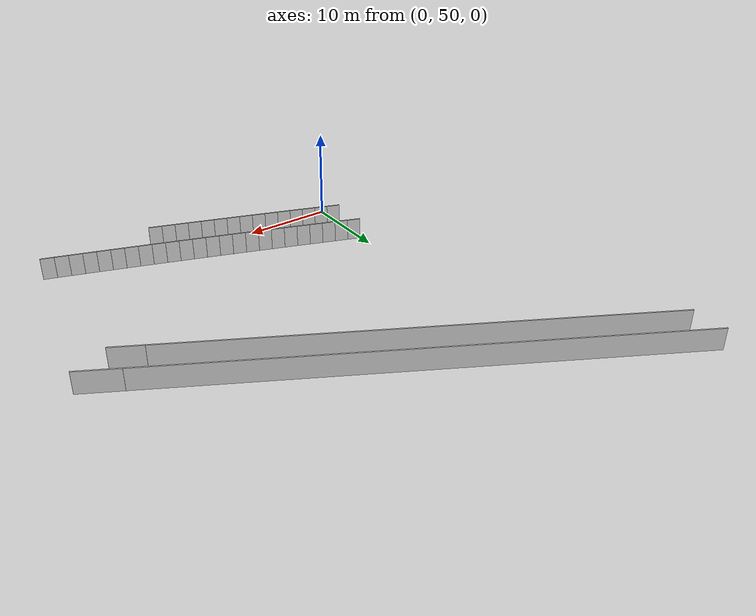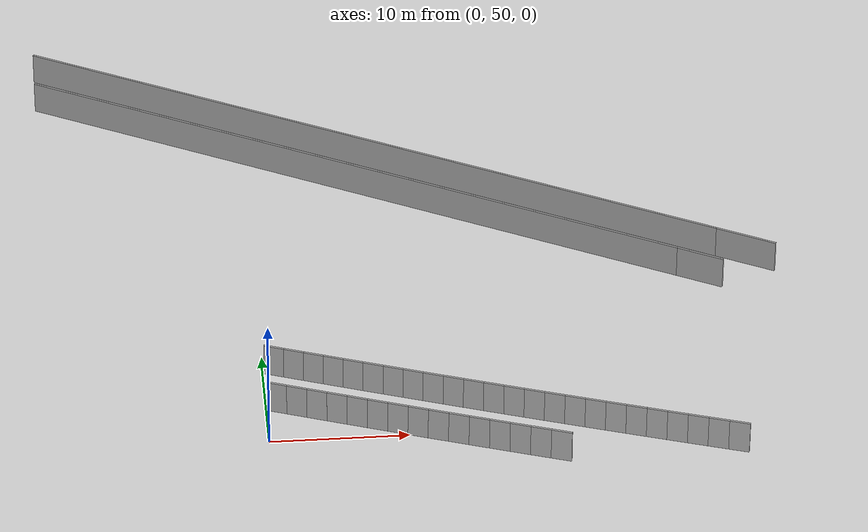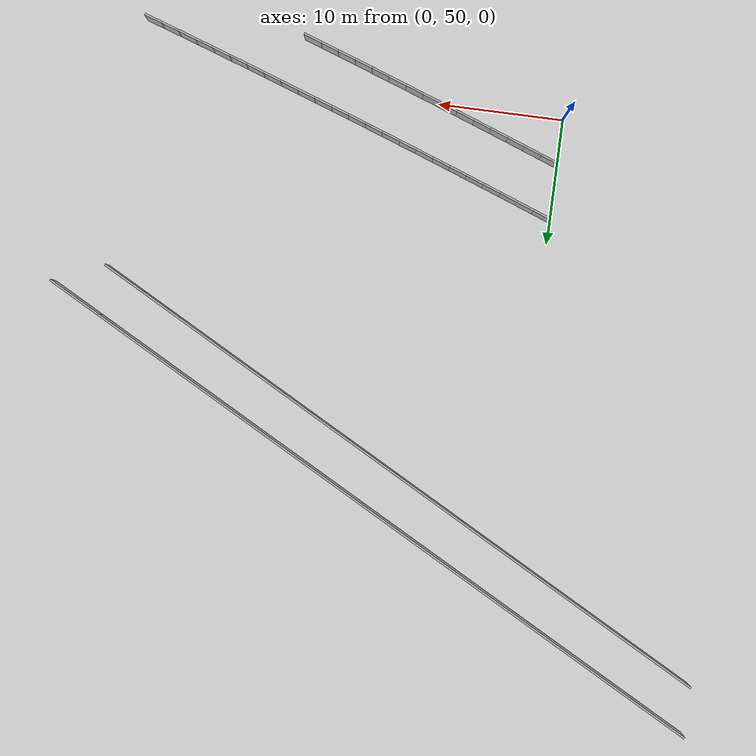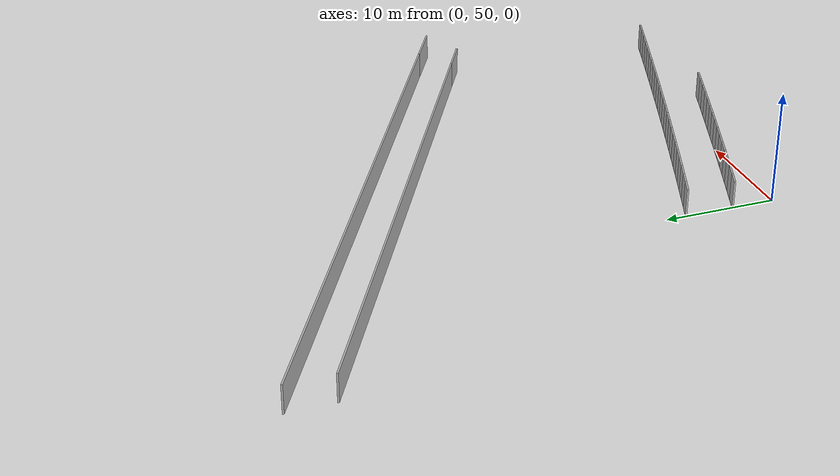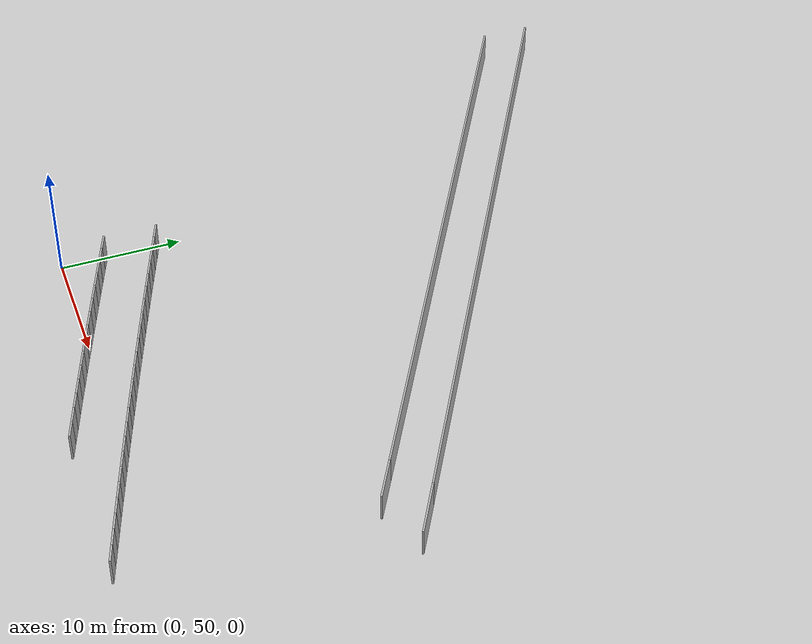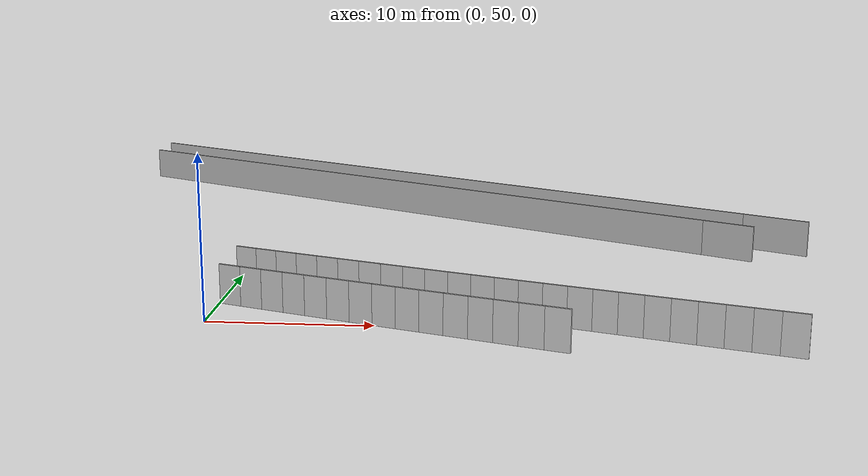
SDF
<sdf version="1.6">
 <model name="sps_0802">
  <static>1</static>
  <allow_auto_disable>0</allow_auto_disable>
  <link name="Wall190">
   <collision name="collision"><geometry><box><size>3.63576 0.15 2.5</size></box></geometry></collision>
   <visual name="visual">
    <geometry><box><size>3.63576 0.15 2.5</size></box></geometry>
    <transparency>0.0</transparency>
   </visual>
   <pose>32.8732 67.0233 1.25 0 -0 2.64268</pose>
  </link>
  <link name="Wall191">
   <collision name="collision"><geometry><box><size>53.3052 0.15 2.5</size></box></geometry></collision>
   <visual name="visual">
    <geometry><box><size>53.3052 0.15 2.5</size></box></geometry>
    <transparency>0.0</transparency>
   </visual>
   <pose>7.87316 80.6456 1.25 0 -0 2.64268</pose>
  </link>
  <link name="Wall529">
   <collision name="collision"><geometry><box><size>56.9411 0.15 2.5</size></box></geometry></collision>
   <visual name="visual">
    <geometry><box><size>56.9411 0.15 2.5</size></box></geometry>
    <transparency>0.0</transparency>
   </visual>
   <pose>9.46944 83.7614 1.25 0 0 -0.498918</pose>
  </link>
  <link name="Wall530">
   <collision name="collision"><geometry><box><size>4.69376 0.15 2.5</size></box></geometry></collision>
   <visual name="visual">
    <geometry><box><size>4.69376 0.15 2.5</size></box></geometry>
    <transparency>0.0</transparency>
   </visual>
   <pose>36.5302 69.016 1.25 0 0 -0.498918</pose>
  </link>
  <link name="Wall8823">
   <collision name="collision"><geometry><box><size>1.49888 0.15 2.5</size></box></geometry></collision>
   <visual name="visual">
    <geometry><box><size>1.49888 0.15 2.5</size></box></geometry>
    <transparency>0.0</transparency>
   </visual>
   <pose>0.735038 53.5175 1.25 0 0 -0.357736</pose>
  </link>
  <link name="Wall8824">
   <collision name="collision"><geometry><box><size>1.49896 0.15 2.5</size></box></geometry></collision>
   <visual name="visual">
    <geometry><box><size>1.49896 0.15 2.5</size></box></geometry>
    <transparency>0.0</transparency>
   </visual>
   <pose>2.13946 52.9937 1.25 0 0 -0.35624</pose>
  </link>
  <link name="Wall8825">
   <collision name="collision"><geometry><box><size>1.49893 0.15 2.5</size></box></geometry></collision>
   <visual name="visual">
    <geometry><box><size>1.49893 0.15 2.5</size></box></geometry>
    <transparency>0.0</transparency>
   </visual>
   <pose>3.54476 52.4722 1.25 0 0 -0.354424</pose>
  </link>
  <link name="Wall8826">
   <collision name="collision"><geometry><box><size>1.49911 0.15 2.5</size></box></geometry></collision>
   <visual name="visual">
    <geometry><box><size>1.49911 0.15 2.5</size></box></geometry>
    <transparency>0.0</transparency>
   </visual>
   <pose>4.95095 51.9529 1.25 0 0 -0.353119</pose>
  </link>
  <link name="Wall8827">
   <collision name="collision"><geometry><box><size>1.49878 0.15 2.5</size></box></geometry></collision>
   <visual name="visual">
    <geometry><box><size>1.49878 0.15 2.5</size></box></geometry>
    <transparency>0.0</transparency>
   </visual>
   <pose>6.35787 51.4358 1.25 0 0 -0.351335</pose>
  </link>
  <link name="Wall8828">
   <collision name="collision"><geometry><box><size>1.49895 0.15 2.5</size></box></geometry></collision>
   <visual name="visual">
    <geometry><box><size>1.49895 0.15 2.5</size></box></geometry>
    <transparency>0.0</transparency>
   </visual>
   <pose>7.76556 50.921 1.25 0 0 -0.349863</pose>
  </link>
  <link name="Wall8829">
   <collision name="collision"><geometry><box><size>1.49883 0.15 2.5</size></box></geometry></collision>
   <visual name="visual">
    <geometry><box><size>1.49883 0.15 2.5</size></box></geometry>
    <transparency>0.0</transparency>
   </visual>
   <pose>9.17403 50.4083 1.25 0 0 -0.348333</pose>
  </link>
  <link name="Wall8830">
   <collision name="collision"><geometry><box><size>1.499 0.15 2.5</size></box></geometry></collision>
   <visual name="visual">
    <geometry><box><size>1.499 0.15 2.5</size></box></geometry>
    <transparency>0.0</transparency>
   </visual>
   <pose>10.5833 49.8978 1.25 0 0 -0.346732</pose>
  </link>
  <link name="Wall8831">
   <collision name="collision"><geometry><box><size>1.49897 0.15 2.5</size></box></geometry></collision>
   <visual name="visual">
    <geometry><box><size>1.49897 0.15 2.5</size></box></geometry>
    <transparency>0.0</transparency>
   </visual>
   <pose>11.9936 49.3896 1.25 0 0 -0.345007</pose>
  </link>
  <link name="Wall8832">
   <collision name="collision"><geometry><box><size>1.499 0.15 2.5</size></box></geometry></collision>
   <visual name="visual">
    <geometry><box><size>1.499 0.15 2.5</size></box></geometry>
    <transparency>0.0</transparency>
   </visual>
   <pose>13.4046 48.8836 1.25 0 0 -0.343616</pose>
  </link>
  <link name="Wall8833">
   <collision name="collision"><geometry><box><size>1.49901 0.15 2.5</size></box></geometry></collision>
   <visual name="visual">
    <geometry><box><size>1.49901 0.15 2.5</size></box></geometry>
    <transparency>0.0</transparency>
   </visual>
   <pose>14.8164 48.3798 1.25 0 0 -0.341928</pose>
  </link>
  <link name="Wall8834">
   <collision name="collision"><geometry><box><size>1.49896 0.15 2.5</size></box></geometry></collision>
   <visual name="visual">
    <geometry><box><size>1.49896 0.15 2.5</size></box></geometry>
    <transparency>0.0</transparency>
   </visual>
   <pose>16.229 47.8783 1.25 0 0 -0.340384</pose>
  </link>
  <link name="Wall8835">
   <collision name="collision"><geometry><box><size>1.49902 0.15 2.5</size></box></geometry></collision>
   <visual name="visual">
    <geometry><box><size>1.49902 0.15 2.5</size></box></geometry>
    <transparency>0.0</transparency>
   </visual>
   <pose>17.6424 47.379 1.25 0 0 -0.338773</pose>
  </link>
  <link name="Wall8836">
   <collision name="collision"><geometry><box><size>1.49883 0.15 2.5</size></box></geometry></collision>
   <visual name="visual">
    <geometry><box><size>1.49883 0.15 2.5</size></box></geometry>
    <transparency>0.0</transparency>
   </visual>
   <pose>19.0564 46.8819 1.25 0 0 -0.337307</pose>
  </link>
  <link name="Wall8837">
   <collision name="collision"><geometry><box><size>1.49883 0.15 2.5</size></box></geometry></collision>
   <visual name="visual">
    <geometry><box><size>1.49883 0.15 2.5</size></box></geometry>
    <transparency>0.0</transparency>
   </visual>
   <pose>20.4712 46.3871 1.25 0 0 -0.335581</pose>
  </link>
  <link name="Wall9903">
   <collision name="collision"><geometry><box><size>1.49237 0.15 2.5</size></box></geometry></collision>
   <visual name="visual">
    <geometry><box><size>1.49237 0.15 2.5</size></box></geometry>
    <transparency>0.0</transparency>
   </visual>
   <pose>0.787345 57.9193 1.25 0 0 -0.359369</pose>
  </link>
  <link name="Wall9904">
   <collision name="collision"><geometry><box><size>1.49249 0.15 2.5</size></box></geometry></collision>
   <visual name="visual">
    <geometry><box><size>1.49249 0.15 2.5</size></box></geometry>
    <transparency>0.0</transparency>
   </visual>
   <pose>2.18487 57.3956 1.25 0 0 -0.357722</pose>
  </link>
  <link name="Wall9905">
   <collision name="collision"><geometry><box><size>1.49224 0.15 2.5</size></box></geometry></collision>
   <visual name="visual">
    <geometry><box><size>1.49224 0.15 2.5</size></box></geometry>
    <transparency>0.0</transparency>
   </visual>
   <pose>3.58315 56.8741 1.25 0 0 -0.356214</pose>
  </link>
  <link name="Wall9906">
   <collision name="collision"><geometry><box><size>1.49244 0.15 2.5</size></box></geometry></collision>
   <visual name="visual">
    <geometry><box><size>1.49244 0.15 2.5</size></box></geometry>
    <transparency>0.0</transparency>
   </visual>
   <pose>4.98223 56.3548 1.25 0 0 -0.354592</pose>
  </link>
  <link name="Wall9907">
   <collision name="collision"><geometry><box><size>1.49251 0.15 2.5</size></box></geometry></collision>
   <visual name="visual">
    <geometry><box><size>1.49251 0.15 2.5</size></box></geometry>
    <transparency>0.0</transparency>
   </visual>
   <pose>6.38225 55.8377 1.25 0 0 -0.353051</pose>
  </link>
  <link name="Wall9908">
   <collision name="collision"><geometry><box><size>1.49241 0.15 2.5</size></box></geometry></collision>
   <visual name="visual">
    <geometry><box><size>1.49241 0.15 2.5</size></box></geometry>
    <transparency>0.0</transparency>
   </visual>
   <pose>7.78307 55.3228 1.25 0 0 -0.351461</pose>
  </link>
  <link name="Wall9909">
   <collision name="collision"><geometry><box><size>1.49232 0.15 2.5</size></box></geometry></collision>
   <visual name="visual">
    <geometry><box><size>1.49232 0.15 2.5</size></box></geometry>
    <transparency>0.0</transparency>
   </visual>
   <pose>9.18465 54.8102 1.25 0 0 -0.349742</pose>
  </link>
  <link name="Wall9910">
   <collision name="collision"><geometry><box><size>1.49246 0.15 2.5</size></box></geometry></collision>
   <visual name="visual">
    <geometry><box><size>1.49246 0.15 2.5</size></box></geometry>
    <transparency>0.0</transparency>
   </visual>
   <pose>10.5871 54.2998 1.25 0 0 -0.348317</pose>
  </link>
  <link name="Wall9911">
   <collision name="collision"><geometry><box><size>1.4924 0.15 2.5</size></box></geometry></collision>
   <visual name="visual">
    <geometry><box><size>1.4924 0.15 2.5</size></box></geometry>
    <transparency>0.0</transparency>
   </visual>
   <pose>11.9903 53.7915 1.25 0 0 -0.346765</pose>
  </link>
  <link name="Wall9912">
   <collision name="collision"><geometry><box><size>1.49239 0.15 2.5</size></box></geometry></collision>
   <visual name="visual">
    <geometry><box><size>1.49239 0.15 2.5</size></box></geometry>
    <transparency>0.0</transparency>
   </visual>
   <pose>13.3942 53.2855 1.25 0 0 -0.345071</pose>
  </link>
  <link name="Wall9913">
   <collision name="collision"><geometry><box><size>1.49246 0.15 2.5</size></box></geometry></collision>
   <visual name="visual">
    <geometry><box><size>1.49246 0.15 2.5</size></box></geometry>
    <transparency>0.0</transparency>
   </visual>
   <pose>14.7991 52.7817 1.25 0 0 -0.343621</pose>
  </link>
  <link name="Wall9914">
   <collision name="collision"><geometry><box><size>1.49239 0.15 2.5</size></box></geometry></collision>
   <visual name="visual">
    <geometry><box><size>1.49239 0.15 2.5</size></box></geometry>
    <transparency>0.0</transparency>
   </visual>
   <pose>16.2047 52.2801 1.25 0 0 -0.341902</pose>
  </link>
  <link name="Wall9915">
   <collision name="collision"><geometry><box><size>1.49242 0.15 2.5</size></box></geometry></collision>
   <visual name="visual">
    <geometry><box><size>1.49242 0.15 2.5</size></box></geometry>
    <transparency>0.0</transparency>
   </visual>
   <pose>17.6111 51.7808 1.25 0 0 -0.340375</pose>
  </link>
  <link name="Wall9916">
   <collision name="collision"><geometry><box><size>1.49224 0.15 2.5</size></box></geometry></collision>
   <visual name="visual">
    <geometry><box><size>1.49224 0.15 2.5</size></box></geometry>
    <transparency>0.0</transparency>
   </visual>
   <pose>19.0182 51.2837 1.25 0 0 -0.338812</pose>
  </link>
  <link name="Wall9917">
   <collision name="collision"><geometry><box><size>1.49246 0.15 2.5</size></box></geometry></collision>
   <visual name="visual">
    <geometry><box><size>1.49246 0.15 2.5</size></box></geometry>
    <transparency>0.0</transparency>
   </visual>
   <pose>20.4261 50.7888 1.25 0 0 -0.337244</pose>
  </link>
  <link name="Wall9918">
   <collision name="collision"><geometry><box><size>1.4924 0.15 2.5</size></box></geometry></collision>
   <visual name="visual">
    <geometry><box><size>1.4924 0.15 2.5</size></box></geometry>
    <transparency>0.0</transparency>
   </visual>
   <pose>21.8349 50.2962 1.25 0 0 -0.335525</pose>
  </link>
  <link name="Wall9919">
   <collision name="collision"><geometry><box><size>1.49225 0.15 2.5</size></box></geometry></collision>
   <visual name="visual">
    <geometry><box><size>1.49225 0.15 2.5</size></box></geometry>
    <transparency>0.0</transparency>
   </visual>
   <pose>23.2443 49.8059 1.25 0 0 -0.333999</pose>
  </link>
  <link name="Wall9920">
   <collision name="collision"><geometry><box><size>1.49258 0.15 2.5</size></box></geometry></collision>
   <visual name="visual">
    <geometry><box><size>1.49258 0.15 2.5</size></box></geometry>
    <transparency>0.0</transparency>
   </visual>
   <pose>24.6547 49.3177 1.25 0 0 -0.332497</pose>
  </link>
  <link name="Wall9921">
   <collision name="collision"><geometry><box><size>1.49232 0.15 2.5</size></box></geometry></collision>
   <visual name="visual">
    <geometry><box><size>1.49232 0.15 2.5</size></box></geometry>
    <transparency>0.0</transparency>
   </visual>
   <pose>26.0658 48.8317 1.25 0 0 -0.330869</pose>
  </link>
  <link name="Wall9922">
   <collision name="collision"><geometry><box><size>1.49242 0.15 2.5</size></box></geometry></collision>
   <visual name="visual">
    <geometry><box><size>1.49242 0.15 2.5</size></box></geometry>
    <transparency>0.0</transparency>
   </visual>
   <pose>27.4776 48.348 1.25 0 0 -0.32929</pose>
  </link>
  <link name="Wall9923">
   <collision name="collision"><geometry><box><size>1.4924 0.15 2.5</size></box></geometry></collision>
   <visual name="visual">
    <geometry><box><size>1.4924 0.15 2.5</size></box></geometry>
    <transparency>0.0</transparency>
   </visual>
   <pose>28.8902 47.8665 1.25 0 0 -0.327739</pose>
  </link>
  <link name="Wall9924">
   <collision name="collision"><geometry><box><size>1.4925 0.15 2.5</size></box></geometry></collision>
   <visual name="visual">
    <geometry><box><size>1.4925 0.15 2.5</size></box></geometry>
    <transparency>0.0</transparency>
   </visual>
   <pose>30.3036 47.3872 1.25 0 0 -0.32616</pose>
  </link>
  <link name="Wall9925">
   <collision name="collision"><geometry><box><size>1.49232 0.15 2.5</size></box></geometry></collision>
   <visual name="visual">
    <geometry><box><size>1.49232 0.15 2.5</size></box></geometry>
    <transparency>0.0</transparency>
   </visual>
   <pose>31.7176 46.9101 1.25 0 0 -0.324648</pose>
  </link>
  <link name="Wall9926">
   <collision name="collision"><geometry><box><size>1.49253 0.15 2.5</size></box></geometry></collision>
   <visual name="visual">
    <geometry><box><size>1.49253 0.15 2.5</size></box></geometry>
    <transparency>0.0</transparency>
   </visual>
   <pose>33.1325 46.4353 1.25 0 0 -0.322876</pose>
  </link>
 </model>
</sdf>
